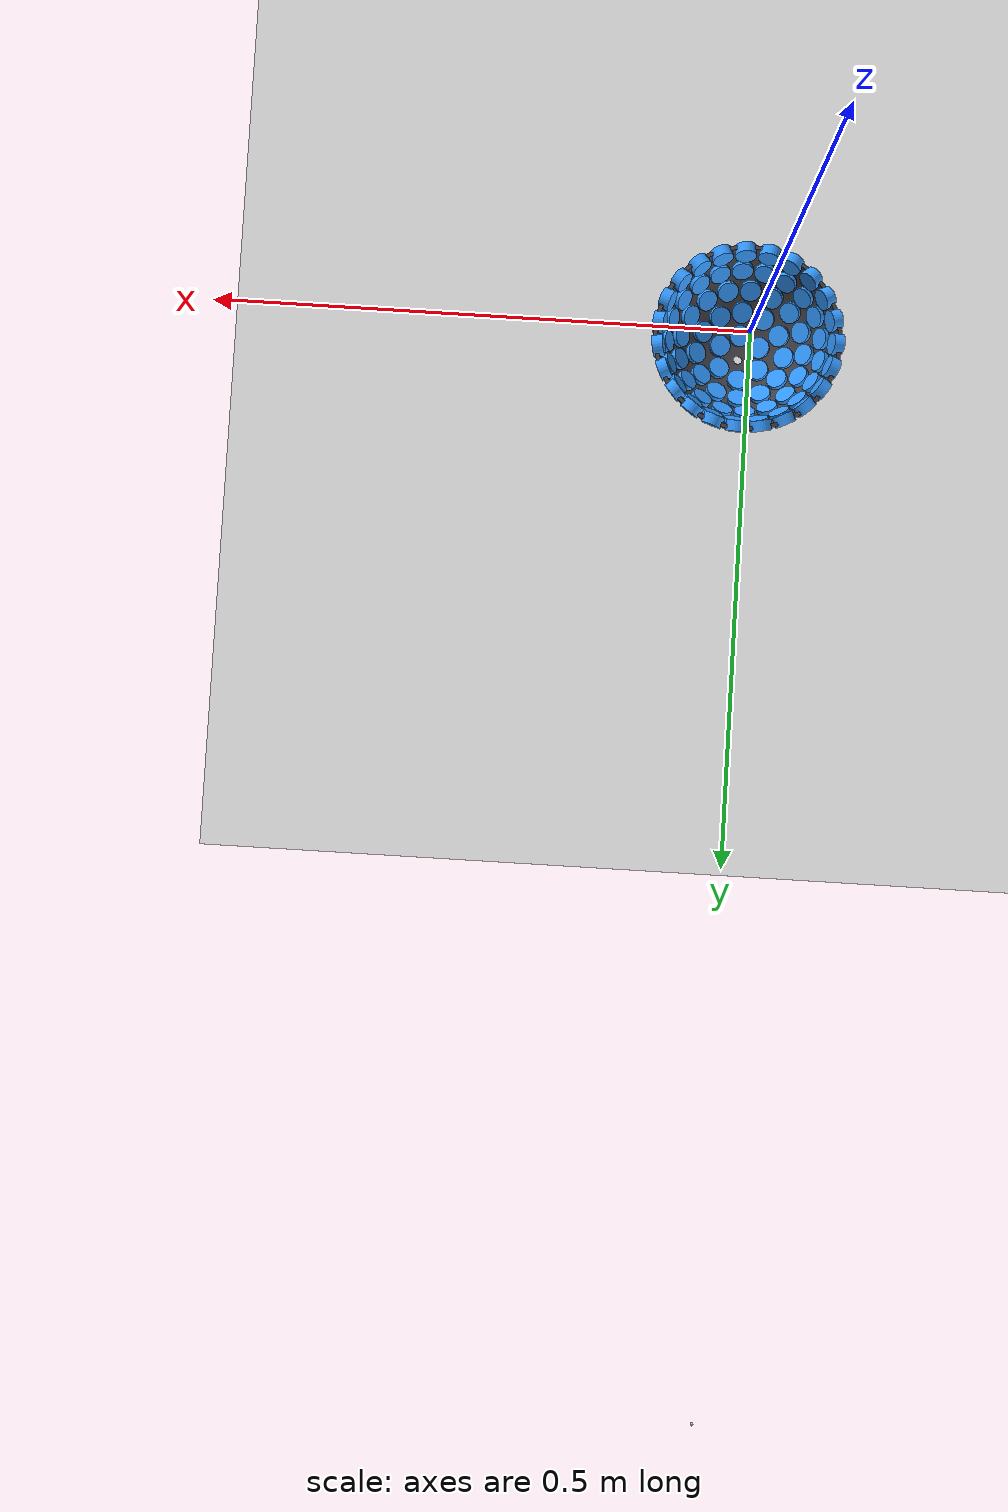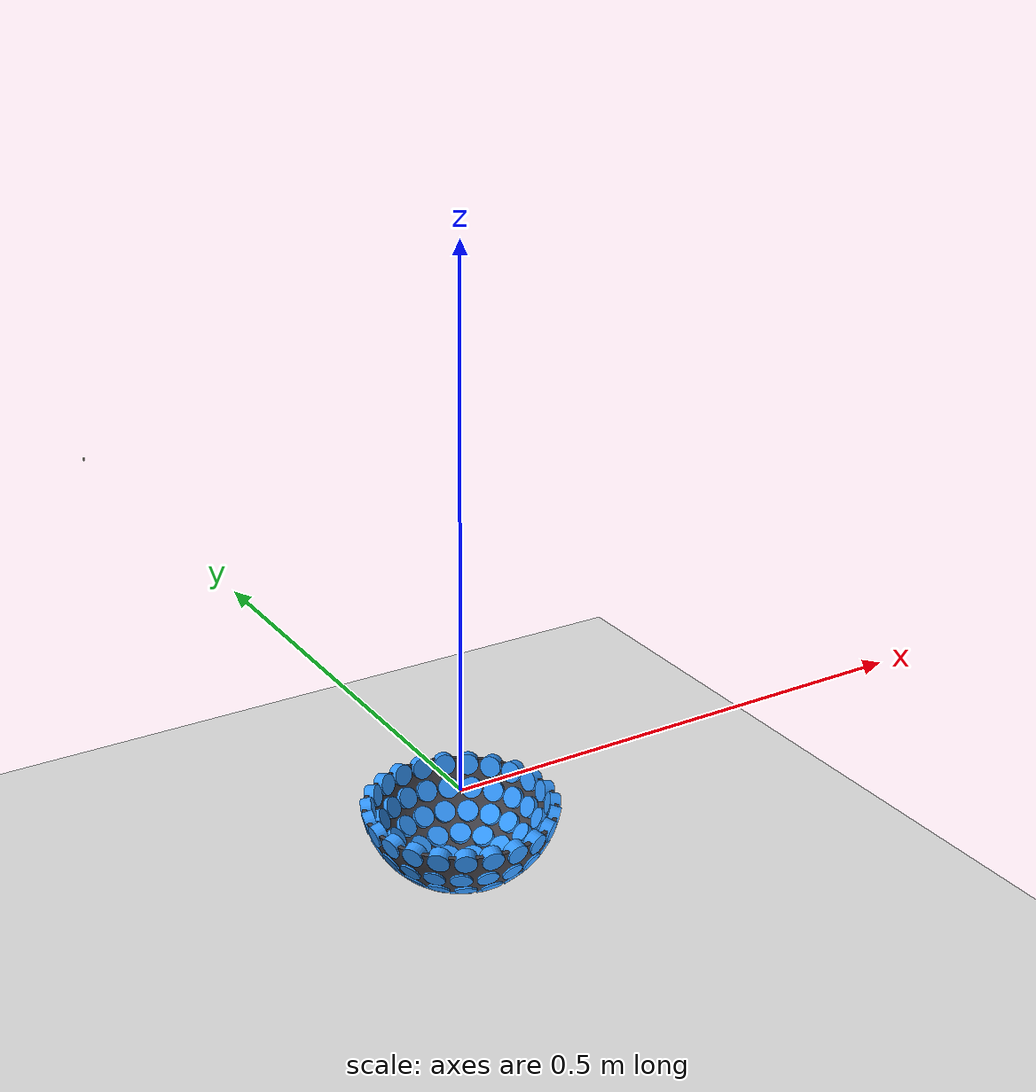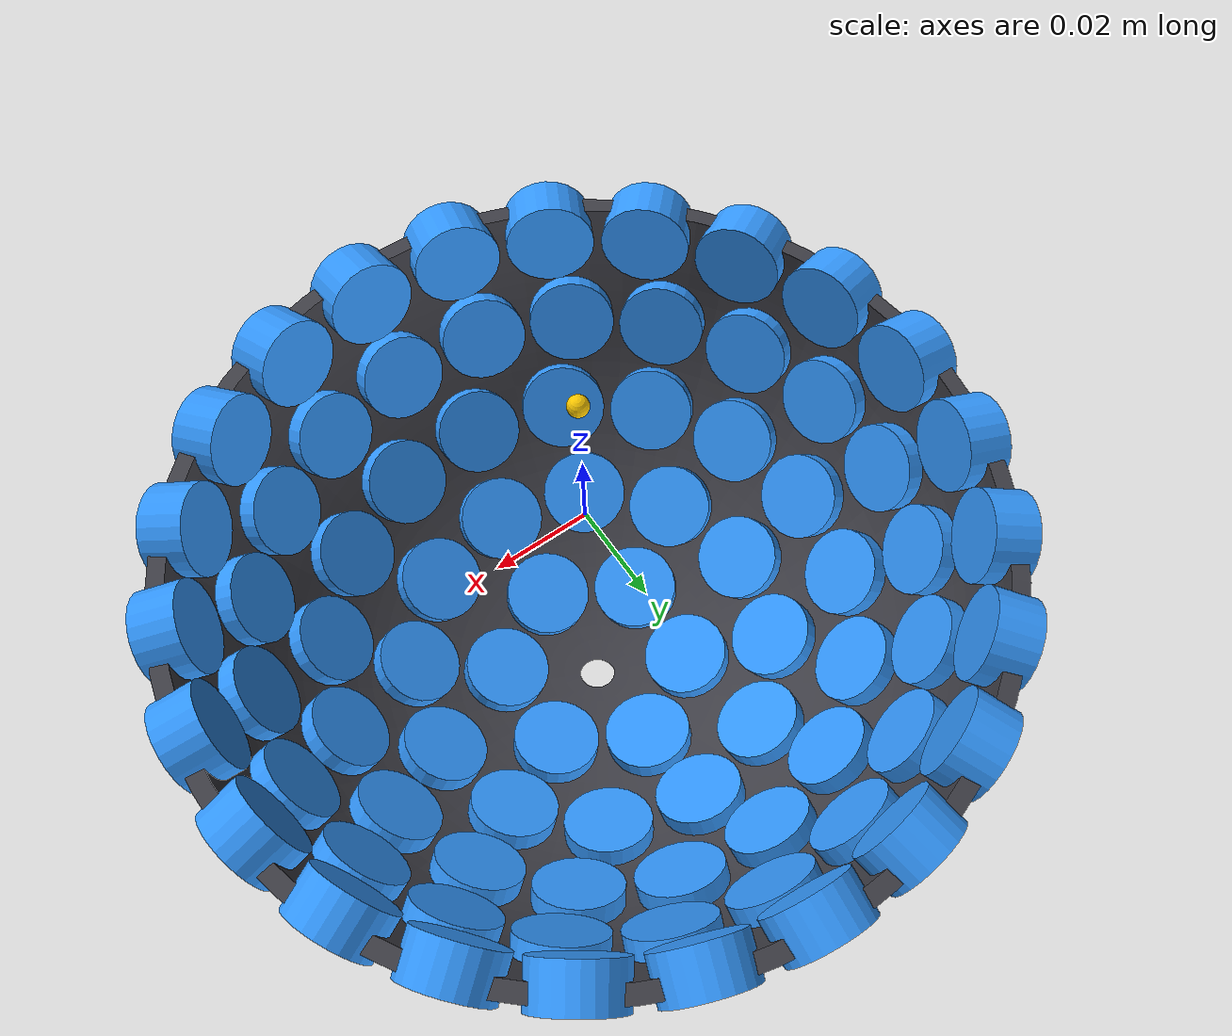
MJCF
<mujoco model="Real Scale Acoustic Levitator">
    <compiler angle="degree"/>

    <!-- Set standard air density (1.225) and viscosity (1.85e-5) -->
    <!-- Lower timestep to 0.1 milliseconds for high stability -->
    <option timestep="0.0001" density="1.225" viscosity="1.85e-5"/>

    <asset>
        <material name="sensor_mat" rgba="0.2 0.6 1 1"/>
        <!-- Dark gray matte housing for the 3D-printed bowl -->
        <material name="bowl_mat" rgba="0.25 0.25 0.28 1" specular="0.2" roughness="0.8"/>
        <mesh name="bowl_mesh" file="bowl.obj"/>
    </asset>

    <default>
        <geom friction="1.0 0.005 0.1"/>
    </default>

    <worldbody>
        <light diffuse=".5 .5 .5" pos="0 0 0.5" dir="0 0 -1"/>
        <geom type="plane" size="0.5 0.5 0.01" rgba=".9 .9 .9 1" pos="0 0 -0.15"/>

        <!-- The 3D Bowl Housing Shell -->
        <body name="transducer_housing" pos="0 0 0">
            <geom name="bowl_geom" type="mesh" mesh="bowl_mesh" material="bowl_mat" contype="1" conaffinity="1"/>
        </body>

        <!-- Transducer 1 to 79 bodies follow here... -->
        <body name="sensor_1" pos="0.01968 0.01136 -0.08294">
            <geom type="cylinder" size="0.0100 0.005" zaxis="-0.2289 -0.1321 0.9645" material="sensor_mat"/>
            <site name="site_sensor_1" pos="0 0 0" zaxis="-0.2289 -0.1321 0.9645" size="0.001" rgba="1 0 0 1"/>
        </body>
        <body name="sensor_2" pos="0.00000 0.02273 -0.08294">
            <geom type="cylinder" size="0.0100 0.005" zaxis="-0.0000 -0.2643 0.9645" material="sensor_mat"/>
            <site name="site_sensor_2" pos="0 0 0" zaxis="-0.0000 -0.2643 0.9645" size="0.001" rgba="1 0 0 1"/>
        </body>
        <body name="sensor_3" pos="-0.01968 0.01136 -0.08294">
            <geom type="cylinder" size="0.0100 0.005" zaxis="0.2289 -0.1321 0.9645" material="sensor_mat"/>
            <site name="site_sensor_3" pos="0 0 0" zaxis="0.2289 -0.1321 0.9645" size="0.001" rgba="1 0 0 1"/>
        </body>
        <body name="sensor_4" pos="-0.01968 -0.01136 -0.08294">
            <geom type="cylinder" size="0.0100 0.005" zaxis="0.2289 0.1321 0.9645" material="sensor_mat"/>
            <site name="site_sensor_4" pos="0 0 0" zaxis="0.2289 0.1321 0.9645" size="0.001" rgba="1 0 0 1"/>
        </body>
        <body name="sensor_5" pos="-0.00000 -0.02273 -0.08294">
            <geom type="cylinder" size="0.0100 0.005" zaxis="0.0000 0.2643 0.9645" material="sensor_mat"/>
            <site name="site_sensor_5" pos="0 0 0" zaxis="0.0000 0.2643 0.9645" size="0.001" rgba="1 0 0 1"/>
        </body>
        <body name="sensor_6" pos="0.01968 -0.01136 -0.08294">
            <geom type="cylinder" size="0.0100 0.005" zaxis="-0.2289 0.1321 0.9645" material="sensor_mat"/>
            <site name="site_sensor_6" pos="0 0 0" zaxis="-0.2289 0.1321 0.9645" size="0.001" rgba="1 0 0 1"/>
        </body>
        <body name="sensor_7" pos="0.04384 0.00000 -0.07399">
            <geom type="cylinder" size="0.0100 0.005" zaxis="-0.5097 -0.0000 0.8603" material="sensor_mat"/>
            <site name="site_sensor_7" pos="0 0 0" zaxis="-0.5097 -0.0000 0.8603" size="0.001" rgba="1 0 0 1"/>
        </body>
        <body name="sensor_8" pos="0.03796 0.02192 -0.07399">
            <geom type="cylinder" size="0.0100 0.005" zaxis="-0.4414 -0.2549 0.8603" material="sensor_mat"/>
            <site name="site_sensor_8" pos="0 0 0" zaxis="-0.4414 -0.2549 0.8603" size="0.001" rgba="1 0 0 1"/>
        </body>
        <body name="sensor_9" pos="0.02192 0.03796 -0.07399">
            <geom type="cylinder" size="0.0100 0.005" zaxis="-0.2549 -0.4414 0.8603" material="sensor_mat"/>
            <site name="site_sensor_9" pos="0 0 0" zaxis="-0.2549 -0.4414 0.8603" size="0.001" rgba="1 0 0 1"/>
        </body>
        <body name="sensor_10" pos="0.00000 0.04384 -0.07399">
            <geom type="cylinder" size="0.0100 0.005" zaxis="-0.0000 -0.5097 0.8603" material="sensor_mat"/>
            <site name="site_sensor_10" pos="0 0 0" zaxis="-0.0000 -0.5097 0.8603" size="0.001" rgba="1 0 0 1"/>
        </body>
        <body name="sensor_11" pos="-0.02192 0.03796 -0.07399">
            <geom type="cylinder" size="0.0100 0.005" zaxis="0.2549 -0.4414 0.8603" material="sensor_mat"/>
            <site name="site_sensor_11" pos="0 0 0" zaxis="0.2549 -0.4414 0.8603" size="0.001" rgba="1 0 0 1"/>
        </body>
        <body name="sensor_12" pos="-0.03796 0.02192 -0.07399">
            <geom type="cylinder" size="0.0100 0.005" zaxis="0.4414 -0.2549 0.8603" material="sensor_mat"/>
            <site name="site_sensor_12" pos="0 0 0" zaxis="0.4414 -0.2549 0.8603" size="0.001" rgba="1 0 0 1"/>
        </body>
        <body name="sensor_13" pos="-0.04384 0.00000 -0.07399">
            <geom type="cylinder" size="0.0100 0.005" zaxis="0.5097 -0.0000 0.8603" material="sensor_mat"/>
            <site name="site_sensor_13" pos="0 0 0" zaxis="0.5097 -0.0000 0.8603" size="0.001" rgba="1 0 0 1"/>
        </body>
        <body name="sensor_14" pos="-0.03796 -0.02192 -0.07399">
            <geom type="cylinder" size="0.0100 0.005" zaxis="0.4414 0.2549 0.8603" material="sensor_mat"/>
            <site name="site_sensor_14" pos="0 0 0" zaxis="0.4414 0.2549 0.8603" size="0.001" rgba="1 0 0 1"/>
        </body>
        <body name="sensor_15" pos="-0.02192 -0.03796 -0.07399">
            <geom type="cylinder" size="0.0100 0.005" zaxis="0.2549 0.4414 0.8603" material="sensor_mat"/>
            <site name="site_sensor_15" pos="0 0 0" zaxis="0.2549 0.4414 0.8603" size="0.001" rgba="1 0 0 1"/>
        </body>
        <body name="sensor_16" pos="-0.00000 -0.04384 -0.07399">
            <geom type="cylinder" size="0.0100 0.005" zaxis="0.0000 0.5097 0.8603" material="sensor_mat"/>
            <site name="site_sensor_16" pos="0 0 0" zaxis="0.0000 0.5097 0.8603" size="0.001" rgba="1 0 0 1"/>
        </body>
        <body name="sensor_17" pos="0.02192 -0.03796 -0.07399">
            <geom type="cylinder" size="0.0100 0.005" zaxis="-0.2549 0.4414 0.8603" material="sensor_mat"/>
            <site name="site_sensor_17" pos="0 0 0" zaxis="-0.2549 0.4414 0.8603" size="0.001" rgba="1 0 0 1"/>
        </body>
        <body name="sensor_18" pos="0.03796 -0.02192 -0.07399">
            <geom type="cylinder" size="0.0100 0.005" zaxis="-0.4414 0.2549 0.8603" material="sensor_mat"/>
            <site name="site_sensor_18" pos="0 0 0" zaxis="-0.4414 0.2549 0.8603" size="0.001" rgba="1 0 0 1"/>
        </body>
        <body name="sensor_19" pos="0.06078 0.01136 -0.05977">
            <geom type="cylinder" size="0.0100 0.005" zaxis="-0.7067 -0.1321 0.6950" material="sensor_mat"/>
            <site name="site_sensor_19" pos="0 0 0" zaxis="-0.7067 -0.1321 0.6950" size="0.001" rgba="1 0 0 1"/>
        </body>
        <body name="sensor_20" pos="0.05257 0.03255 -0.05977">
            <geom type="cylinder" size="0.0100 0.005" zaxis="-0.6113 -0.3785 0.6950" material="sensor_mat"/>
            <site name="site_sensor_20" pos="0 0 0" zaxis="-0.6113 -0.3785 0.6950" size="0.001" rgba="1 0 0 1"/>
        </body>
        <body name="sensor_21" pos="0.03726 0.04934 -0.05977">
            <geom type="cylinder" size="0.0100 0.005" zaxis="-0.4333 -0.5738 0.6950" material="sensor_mat"/>
            <site name="site_sensor_21" pos="0 0 0" zaxis="-0.4333 -0.5738 0.6950" size="0.001" rgba="1 0 0 1"/>
        </body>
        <body name="sensor_22" pos="0.01692 0.05947 -0.05977">
            <geom type="cylinder" size="0.0100 0.005" zaxis="-0.1968 -0.6915 0.6950" material="sensor_mat"/>
            <site name="site_sensor_22" pos="0 0 0" zaxis="-0.1968 -0.6915 0.6950" size="0.001" rgba="1 0 0 1"/>
        </body>
        <body name="sensor_23" pos="-0.00571 0.06157 -0.05977">
            <geom type="cylinder" size="0.0100 0.005" zaxis="0.0663 -0.7159 0.6950" material="sensor_mat"/>
            <site name="site_sensor_23" pos="0 0 0" zaxis="0.0663 -0.7159 0.6950" size="0.001" rgba="1 0 0 1"/>
        </body>
        <body name="sensor_24" pos="-0.02756 0.05535 -0.05977">
            <geom type="cylinder" size="0.0100 0.005" zaxis="0.3205 -0.6436 0.6950" material="sensor_mat"/>
            <site name="site_sensor_24" pos="0 0 0" zaxis="0.3205 -0.6436 0.6950" size="0.001" rgba="1 0 0 1"/>
        </body>
        <body name="sensor_25" pos="-0.04569 0.04166 -0.05977">
            <geom type="cylinder" size="0.0100 0.005" zaxis="0.5313 -0.4844 0.6950" material="sensor_mat"/>
            <site name="site_sensor_25" pos="0 0 0" zaxis="0.5313 -0.4844 0.6950" size="0.001" rgba="1 0 0 1"/>
        </body>
        <body name="sensor_26" pos="-0.05766 0.02234 -0.05977">
            <geom type="cylinder" size="0.0100 0.005" zaxis="0.6704 -0.2597 0.6950" material="sensor_mat"/>
            <site name="site_sensor_26" pos="0 0 0" zaxis="0.6704 -0.2597 0.6950" size="0.001" rgba="1 0 0 1"/>
        </body>
        <body name="sensor_27" pos="-0.06183 0.00000 -0.05977">
            <geom type="cylinder" size="0.0100 0.005" zaxis="0.7190 -0.0000 0.6950" material="sensor_mat"/>
            <site name="site_sensor_27" pos="0 0 0" zaxis="0.7190 -0.0000 0.6950" size="0.001" rgba="1 0 0 1"/>
        </body>
        <body name="sensor_28" pos="-0.05766 -0.02234 -0.05977">
            <geom type="cylinder" size="0.0100 0.005" zaxis="0.6704 0.2597 0.6950" material="sensor_mat"/>
            <site name="site_sensor_28" pos="0 0 0" zaxis="0.6704 0.2597 0.6950" size="0.001" rgba="1 0 0 1"/>
        </body>
        <body name="sensor_29" pos="-0.04569 -0.04166 -0.05977">
            <geom type="cylinder" size="0.0100 0.005" zaxis="0.5313 0.4844 0.6950" material="sensor_mat"/>
            <site name="site_sensor_29" pos="0 0 0" zaxis="0.5313 0.4844 0.6950" size="0.001" rgba="1 0 0 1"/>
        </body>
        <body name="sensor_30" pos="-0.02756 -0.05535 -0.05977">
            <geom type="cylinder" size="0.0100 0.005" zaxis="0.3205 0.6436 0.6950" material="sensor_mat"/>
            <site name="site_sensor_30" pos="0 0 0" zaxis="0.3205 0.6436 0.6950" size="0.001" rgba="1 0 0 1"/>
        </body>
        <body name="sensor_31" pos="-0.00571 -0.06157 -0.05977">
            <geom type="cylinder" size="0.0100 0.005" zaxis="0.0663 0.7159 0.6950" material="sensor_mat"/>
            <site name="site_sensor_31" pos="0 0 0" zaxis="0.0663 0.7159 0.6950" size="0.001" rgba="1 0 0 1"/>
        </body>
        <body name="sensor_32" pos="0.01692 -0.05947 -0.05977">
            <geom type="cylinder" size="0.0100 0.005" zaxis="-0.1968 0.6915 0.6950" material="sensor_mat"/>
            <site name="site_sensor_32" pos="0 0 0" zaxis="-0.1968 0.6915 0.6950" size="0.001" rgba="1 0 0 1"/>
        </body>
        <body name="sensor_33" pos="0.03726 -0.04934 -0.05977">
            <geom type="cylinder" size="0.0100 0.005" zaxis="-0.4333 0.5738 0.6950" material="sensor_mat"/>
            <site name="site_sensor_33" pos="0 0 0" zaxis="-0.4333 0.5738 0.6950" size="0.001" rgba="1 0 0 1"/>
        </body>
        <body name="sensor_34" pos="0.05257 -0.03255 -0.05977">
            <geom type="cylinder" size="0.0100 0.005" zaxis="-0.6113 0.3785 0.6950" material="sensor_mat"/>
            <site name="site_sensor_34" pos="0 0 0" zaxis="-0.6113 0.3785 0.6950" size="0.001" rgba="1 0 0 1"/>
        </body>
        <body name="sensor_35" pos="0.06078 -0.01136 -0.05977">
            <geom type="cylinder" size="0.0100 0.005" zaxis="-0.7067 0.1321 0.6950" material="sensor_mat"/>
            <site name="site_sensor_35" pos="0 0 0" zaxis="-0.7067 0.1321 0.6950" size="0.001" rgba="1 0 0 1"/>
        </body>
        <body name="sensor_36" pos="0.07543 0.00000 -0.04131">
            <geom type="cylinder" size="0.0100 0.005" zaxis="-0.8771 -0.0000 0.4803" material="sensor_mat"/>
            <site name="site_sensor_36" pos="0 0 0" zaxis="-0.8771 -0.0000 0.4803" size="0.001" rgba="1 0 0 1"/>
        </body>
        <body name="sensor_37" pos="0.07208 0.02223 -0.04131">
            <geom type="cylinder" size="0.0100 0.005" zaxis="-0.8381 -0.2585 0.4803" material="sensor_mat"/>
            <site name="site_sensor_37" pos="0 0 0" zaxis="-0.8381 -0.2585 0.4803" size="0.001" rgba="1 0 0 1"/>
        </body>
        <body name="sensor_38" pos="0.06232 0.04249 -0.04131">
            <geom type="cylinder" size="0.0100 0.005" zaxis="-0.7247 -0.4941 0.4803" material="sensor_mat"/>
            <site name="site_sensor_38" pos="0 0 0" zaxis="-0.7247 -0.4941 0.4803" size="0.001" rgba="1 0 0 1"/>
        </body>
        <body name="sensor_39" pos="0.04703 0.05897 -0.04131">
            <geom type="cylinder" size="0.0100 0.005" zaxis="-0.5469 -0.6857 0.4803" material="sensor_mat"/>
            <site name="site_sensor_39" pos="0 0 0" zaxis="-0.5469 -0.6857 0.4803" size="0.001" rgba="1 0 0 1"/>
        </body>
        <body name="sensor_40" pos="0.02756 0.07022 -0.04131">
            <geom type="cylinder" size="0.0100 0.005" zaxis="-0.3204 -0.8165 0.4803" material="sensor_mat"/>
            <site name="site_sensor_40" pos="0 0 0" zaxis="-0.3204 -0.8165 0.4803" size="0.001" rgba="1 0 0 1"/>
        </body>
        <body name="sensor_41" pos="0.00564 0.07522 -0.04131">
            <geom type="cylinder" size="0.0100 0.005" zaxis="-0.0655 -0.8746 0.4803" material="sensor_mat"/>
            <site name="site_sensor_41" pos="0 0 0" zaxis="-0.0655 -0.8746 0.4803" size="0.001" rgba="1 0 0 1"/>
        </body>
        <body name="sensor_42" pos="-0.01678 0.07354 -0.04131">
            <geom type="cylinder" size="0.0100 0.005" zaxis="0.1952 -0.8551 0.4803" material="sensor_mat"/>
            <site name="site_sensor_42" pos="0 0 0" zaxis="0.1952 -0.8551 0.4803" size="0.001" rgba="1 0 0 1"/>
        </body>
        <body name="sensor_43" pos="-0.03771 0.06532 -0.04131">
            <geom type="cylinder" size="0.0100 0.005" zaxis="0.4385 -0.7596 0.4803" material="sensor_mat"/>
            <site name="site_sensor_43" pos="0 0 0" zaxis="0.4385 -0.7596 0.4803" size="0.001" rgba="1 0 0 1"/>
        </body>
        <body name="sensor_44" pos="-0.05529 0.05131 -0.04131">
            <geom type="cylinder" size="0.0100 0.005" zaxis="0.6430 -0.5966 0.4803" material="sensor_mat"/>
            <site name="site_sensor_44" pos="0 0 0" zaxis="0.6430 -0.5966 0.4803" size="0.001" rgba="1 0 0 1"/>
        </body>
        <body name="sensor_45" pos="-0.06796 0.03273 -0.04131">
            <geom type="cylinder" size="0.0100 0.005" zaxis="0.7902 -0.3806 0.4803" material="sensor_mat"/>
            <site name="site_sensor_45" pos="0 0 0" zaxis="0.7902 -0.3806 0.4803" size="0.001" rgba="1 0 0 1"/>
        </body>
        <body name="sensor_46" pos="-0.07459 0.01124 -0.04131">
            <geom type="cylinder" size="0.0100 0.005" zaxis="0.8673 -0.1307 0.4803" material="sensor_mat"/>
            <site name="site_sensor_46" pos="0 0 0" zaxis="0.8673 -0.1307 0.4803" size="0.001" rgba="1 0 0 1"/>
        </body>
        <body name="sensor_47" pos="-0.07459 -0.01124 -0.04131">
            <geom type="cylinder" size="0.0100 0.005" zaxis="0.8673 0.1307 0.4803" material="sensor_mat"/>
            <site name="site_sensor_47" pos="0 0 0" zaxis="0.8673 0.1307 0.4803" size="0.001" rgba="1 0 0 1"/>
        </body>
        <body name="sensor_48" pos="-0.06796 -0.03273 -0.04131">
            <geom type="cylinder" size="0.0100 0.005" zaxis="0.7902 0.3806 0.4803" material="sensor_mat"/>
            <site name="site_sensor_48" pos="0 0 0" zaxis="0.7902 0.3806 0.4803" size="0.001" rgba="1 0 0 1"/>
        </body>
        <body name="sensor_49" pos="-0.05529 -0.05131 -0.04131">
            <geom type="cylinder" size="0.0100 0.005" zaxis="0.6430 0.5966 0.4803" material="sensor_mat"/>
            <site name="site_sensor_49" pos="0 0 0" zaxis="0.6430 0.5966 0.4803" size="0.001" rgba="1 0 0 1"/>
        </body>
        <body name="sensor_50" pos="-0.03771 -0.06532 -0.04131">
            <geom type="cylinder" size="0.0100 0.005" zaxis="0.4385 0.7596 0.4803" material="sensor_mat"/>
            <site name="site_sensor_50" pos="0 0 0" zaxis="0.4385 0.7596 0.4803" size="0.001" rgba="1 0 0 1"/>
        </body>
        <body name="sensor_51" pos="-0.01678 -0.07354 -0.04131">
            <geom type="cylinder" size="0.0100 0.005" zaxis="0.1952 0.8551 0.4803" material="sensor_mat"/>
            <site name="site_sensor_51" pos="0 0 0" zaxis="0.1952 0.8551 0.4803" size="0.001" rgba="1 0 0 1"/>
        </body>
        <body name="sensor_52" pos="0.00564 -0.07522 -0.04131">
            <geom type="cylinder" size="0.0100 0.005" zaxis="-0.0655 0.8746 0.4803" material="sensor_mat"/>
            <site name="site_sensor_52" pos="0 0 0" zaxis="-0.0655 0.8746 0.4803" size="0.001" rgba="1 0 0 1"/>
        </body>
        <body name="sensor_53" pos="0.02756 -0.07022 -0.04131">
            <geom type="cylinder" size="0.0100 0.005" zaxis="-0.3204 0.8165 0.4803" material="sensor_mat"/>
            <site name="site_sensor_53" pos="0 0 0" zaxis="-0.3204 0.8165 0.4803" size="0.001" rgba="1 0 0 1"/>
        </body>
        <body name="sensor_54" pos="0.04703 -0.05897 -0.04131">
            <geom type="cylinder" size="0.0100 0.005" zaxis="-0.5469 0.6857 0.4803" material="sensor_mat"/>
            <site name="site_sensor_54" pos="0 0 0" zaxis="-0.5469 0.6857 0.4803" size="0.001" rgba="1 0 0 1"/>
        </body>
        <body name="sensor_55" pos="0.06232 -0.04249 -0.04131">
            <geom type="cylinder" size="0.0100 0.005" zaxis="-0.7247 0.4941 0.4803" material="sensor_mat"/>
            <site name="site_sensor_55" pos="0 0 0" zaxis="-0.7247 0.4941 0.4803" size="0.001" rgba="1 0 0 1"/>
        </body>
        <body name="sensor_56" pos="0.07208 -0.02223 -0.04131">
            <geom type="cylinder" size="0.0100 0.005" zaxis="-0.8381 0.2585 0.4803" material="sensor_mat"/>
            <site name="site_sensor_56" pos="0 0 0" zaxis="-0.8381 0.2585 0.4803" size="0.001" rgba="1 0 0 1"/>
        </body>
        <body name="sensor_57" pos="0.08289 0.01139 -0.01991">
            <geom type="cylinder" size="0.0100 0.005" zaxis="-0.9638 -0.1325 0.2315" material="sensor_mat"/>
            <site name="site_sensor_57" pos="0 0 0" zaxis="-0.9638 -0.1325 0.2315" size="0.001" rgba="1 0 0 1"/>
        </body>
        <body name="sensor_58" pos="0.07674 0.03333 -0.01991">
            <geom type="cylinder" size="0.0100 0.005" zaxis="-0.8923 -0.3876 0.2315" material="sensor_mat"/>
            <site name="site_sensor_58" pos="0 0 0" zaxis="-0.8923 -0.3876 0.2315" size="0.001" rgba="1 0 0 1"/>
        </body>
        <body name="sensor_59" pos="0.06490 0.05280 -0.01991">
            <geom type="cylinder" size="0.0100 0.005" zaxis="-0.7546 -0.6139 0.2315" material="sensor_mat"/>
            <site name="site_sensor_59" pos="0 0 0" zaxis="-0.7546 -0.6139 0.2315" size="0.001" rgba="1 0 0 1"/>
        </body>
        <body name="sensor_60" pos="0.04825 0.06835 -0.01991">
            <geom type="cylinder" size="0.0100 0.005" zaxis="-0.5610 -0.7948 0.2315" material="sensor_mat"/>
            <site name="site_sensor_60" pos="0 0 0" zaxis="-0.5610 -0.7948 0.2315" size="0.001" rgba="1 0 0 1"/>
        </body>
        <body name="sensor_61" pos="0.02802 0.07883 -0.01991">
            <geom type="cylinder" size="0.0100 0.005" zaxis="-0.3258 -0.9167 0.2315" material="sensor_mat"/>
            <site name="site_sensor_61" pos="0 0 0" zaxis="-0.3258 -0.9167 0.2315" size="0.001" rgba="1 0 0 1"/>
        </body>
        <body name="sensor_62" pos="0.00571 0.08347 -0.01991">
            <geom type="cylinder" size="0.0100 0.005" zaxis="-0.0664 -0.9706 0.2315" material="sensor_mat"/>
            <site name="site_sensor_62" pos="0 0 0" zaxis="-0.0664 -0.9706 0.2315" size="0.001" rgba="1 0 0 1"/>
        </body>
        <body name="sensor_63" pos="-0.01702 0.08191 -0.01991">
            <geom type="cylinder" size="0.0100 0.005" zaxis="0.1979 -0.9525 0.2315" material="sensor_mat"/>
            <site name="site_sensor_63" pos="0 0 0" zaxis="0.1979 -0.9525 0.2315" size="0.001" rgba="1 0 0 1"/>
        </body>
        <body name="sensor_64" pos="-0.03849 0.07428 -0.01991">
            <geom type="cylinder" size="0.0100 0.005" zaxis="0.4476 -0.8638 0.2315" material="sensor_mat"/>
            <site name="site_sensor_64" pos="0 0 0" zaxis="0.4476 -0.8638 0.2315" size="0.001" rgba="1 0 0 1"/>
        </body>
        <body name="sensor_65" pos="-0.05711 0.06114 -0.01991">
            <geom type="cylinder" size="0.0100 0.005" zaxis="0.6640 -0.7110 0.2315" material="sensor_mat"/>
            <site name="site_sensor_65" pos="0 0 0" zaxis="0.6640 -0.7110 0.2315" size="0.001" rgba="1 0 0 1"/>
        </body>
        <body name="sensor_66" pos="-0.07148 0.04347 -0.01991">
            <geom type="cylinder" size="0.0100 0.005" zaxis="0.8312 -0.5055 0.2315" material="sensor_mat"/>
            <site name="site_sensor_66" pos="0 0 0" zaxis="0.8312 -0.5055 0.2315" size="0.001" rgba="1 0 0 1"/>
        </body>
        <body name="sensor_67" pos="-0.08056 0.02257 -0.01991">
            <geom type="cylinder" size="0.0100 0.005" zaxis="0.9368 -0.2625 0.2315" material="sensor_mat"/>
            <site name="site_sensor_67" pos="0 0 0" zaxis="0.9368 -0.2625 0.2315" size="0.001" rgba="1 0 0 1"/>
        </body>
        <body name="sensor_68" pos="-0.08366 0.00000 -0.01991">
            <geom type="cylinder" size="0.0100 0.005" zaxis="0.9728 -0.0000 0.2315" material="sensor_mat"/>
            <site name="site_sensor_68" pos="0 0 0" zaxis="0.9728 -0.0000 0.2315" size="0.001" rgba="1 0 0 1"/>
        </body>
        <body name="sensor_69" pos="-0.08056 -0.02257 -0.01991">
            <geom type="cylinder" size="0.0100 0.005" zaxis="0.9368 0.2625 0.2315" material="sensor_mat"/>
            <site name="site_sensor_69" pos="0 0 0" zaxis="0.9368 0.2625 0.2315" size="0.001" rgba="1 0 0 1"/>
        </body>
        <body name="sensor_70" pos="-0.07148 -0.04347 -0.01991">
            <geom type="cylinder" size="0.0100 0.005" zaxis="0.8312 0.5055 0.2315" material="sensor_mat"/>
            <site name="site_sensor_70" pos="0 0 0" zaxis="0.8312 0.5055 0.2315" size="0.001" rgba="1 0 0 1"/>
        </body>
        <body name="sensor_71" pos="-0.05711 -0.06114 -0.01991">
            <geom type="cylinder" size="0.0100 0.005" zaxis="0.6640 0.7110 0.2315" material="sensor_mat"/>
            <site name="site_sensor_71" pos="0 0 0" zaxis="0.6640 0.7110 0.2315" size="0.001" rgba="1 0 0 1"/>
        </body>
        <body name="sensor_72" pos="-0.03849 -0.07428 -0.01991">
            <geom type="cylinder" size="0.0100 0.005" zaxis="0.4476 0.8638 0.2315" material="sensor_mat"/>
            <site name="site_sensor_72" pos="0 0 0" zaxis="0.4476 0.8638 0.2315" size="0.001" rgba="1 0 0 1"/>
        </body>
        <body name="sensor_73" pos="-0.01702 -0.08191 -0.01991">
            <geom type="cylinder" size="0.0100 0.005" zaxis="0.1979 0.9525 0.2315" material="sensor_mat"/>
            <site name="site_sensor_73" pos="0 0 0" zaxis="0.1979 0.9525 0.2315" size="0.001" rgba="1 0 0 1"/>
        </body>
        <body name="sensor_74" pos="0.00571 -0.08347 -0.01991">
            <geom type="cylinder" size="0.0100 0.005" zaxis="-0.0664 0.9706 0.2315" material="sensor_mat"/>
            <site name="site_sensor_74" pos="0 0 0" zaxis="-0.0664 0.9706 0.2315" size="0.001" rgba="1 0 0 1"/>
        </body>
        <body name="sensor_75" pos="0.02802 -0.07883 -0.01991">
            <geom type="cylinder" size="0.0100 0.005" zaxis="-0.3258 0.9167 0.2315" material="sensor_mat"/>
            <site name="site_sensor_75" pos="0 0 0" zaxis="-0.3258 0.9167 0.2315" size="0.001" rgba="1 0 0 1"/>
        </body>
        <body name="sensor_76" pos="0.04825 -0.06835 -0.01991">
            <geom type="cylinder" size="0.0100 0.005" zaxis="-0.5610 0.7948 0.2315" material="sensor_mat"/>
            <site name="site_sensor_76" pos="0 0 0" zaxis="-0.5610 0.7948 0.2315" size="0.001" rgba="1 0 0 1"/>
        </body>
        <body name="sensor_77" pos="0.06490 -0.05280 -0.01991">
            <geom type="cylinder" size="0.0100 0.005" zaxis="-0.7546 0.6139 0.2315" material="sensor_mat"/>
            <site name="site_sensor_77" pos="0 0 0" zaxis="-0.7546 0.6139 0.2315" size="0.001" rgba="1 0 0 1"/>
        </body>
        <body name="sensor_78" pos="0.07674 -0.03333 -0.01991">
            <geom type="cylinder" size="0.0100 0.005" zaxis="-0.8923 0.3876 0.2315" material="sensor_mat"/>
            <site name="site_sensor_78" pos="0 0 0" zaxis="-0.8923 0.3876 0.2315" size="0.001" rgba="1 0 0 1"/>
        </body>
        <body name="sensor_79" pos="0.08289 -0.01139 -0.01991">
            <geom type="cylinder" size="0.0100 0.005" zaxis="-0.9638 0.1325 0.2315" material="sensor_mat"/>
            <site name="site_sensor_79" pos="0 0 0" zaxis="-0.9638 0.1325 0.2315" size="0.001" rgba="1 0 0 1"/>
        </body>

        <!-- test object -->

        <body name="test_rice" pos="0 1 0.00">
            <freejoint/>
            <!-- Scaled down to 1mm radius, 2mm half-length -->
            <geom type="capsule" size="0.001 0.002" mass="0.0001" rgba="0.9 0.9 0.8 1"/>
        </body>

        <body name="test_ball" pos="0 0 0.04">
            <freejoint/>
            <!-- Scaled down to 5mm radius 1 gram -->
            <geom type="sphere" size="0.002" density="40" rgba="1 0.8 0 1"/>
        </body>
    </worldbody>

    <!-- sensor block -->
    <sensor>
        <rangefinder name="ultra_1" site="site_sensor_1" cutoff="0.15" noise="0.01"/>
        <rangefinder name="ultra_2" site="site_sensor_2" cutoff="0.15" noise="0.01"/>
        <rangefinder name="ultra_3" site="site_sensor_3" cutoff="0.15" noise="0.01"/>
        <rangefinder name="ultra_4" site="site_sensor_4" cutoff="0.15" noise="0.01"/>
        <rangefinder name="ultra_5" site="site_sensor_5" cutoff="0.15" noise="0.01"/>
        <rangefinder name="ultra_6" site="site_sensor_6" cutoff="0.15" noise="0.01"/>
        <rangefinder name="ultra_7" site="site_sensor_7" cutoff="0.15" noise="0.01"/>
        <rangefinder name="ultra_8" site="site_sensor_8" cutoff="0.15" noise="0.01"/>
        <rangefinder name="ultra_9" site="site_sensor_9" cutoff="0.15" noise="0.01"/>
        <rangefinder name="ultra_10" site="site_sensor_10" cutoff="0.15" noise="0.01"/>
        <rangefinder name="ultra_11" site="site_sensor_11" cutoff="0.15" noise="0.01"/>
        <rangefinder name="ultra_12" site="site_sensor_12" cutoff="0.15" noise="0.01"/>
        <rangefinder name="ultra_13" site="site_sensor_13" cutoff="0.15" noise="0.01"/>
        <rangefinder name="ultra_14" site="site_sensor_14" cutoff="0.15" noise="0.01"/>
        <rangefinder name="ultra_15" site="site_sensor_15" cutoff="0.15" noise="0.01"/>
        <rangefinder name="ultra_16" site="site_sensor_16" cutoff="0.15" noise="0.01"/>
        <rangefinder name="ultra_17" site="site_sensor_17" cutoff="0.15" noise="0.01"/>
        <rangefinder name="ultra_18" site="site_sensor_18" cutoff="0.15" noise="0.01"/>
        <rangefinder name="ultra_19" site="site_sensor_19" cutoff="0.15" noise="0.01"/>
        <rangefinder name="ultra_20" site="site_sensor_20" cutoff="0.15" noise="0.01"/>
        <rangefinder name="ultra_21" site="site_sensor_21" cutoff="0.15" noise="0.01"/>
        <rangefinder name="ultra_22" site="site_sensor_22" cutoff="0.15" noise="0.01"/>
        <rangefinder name="ultra_23" site="site_sensor_23" cutoff="0.15" noise="0.01"/>
        <rangefinder name="ultra_24" site="site_sensor_24" cutoff="0.15" noise="0.01"/>
        <rangefinder name="ultra_25" site="site_sensor_25" cutoff="0.15" noise="0.01"/>
        <rangefinder name="ultra_26" site="site_sensor_26" cutoff="0.15" noise="0.01"/>
        <rangefinder name="ultra_27" site="site_sensor_27" cutoff="0.15" noise="0.01"/>
        <rangefinder name="ultra_28" site="site_sensor_28" cutoff="0.15" noise="0.01"/>
        <rangefinder name="ultra_29" site="site_sensor_29" cutoff="0.15" noise="0.01"/>
        <rangefinder name="ultra_30" site="site_sensor_30" cutoff="0.15" noise="0.01"/>
        <rangefinder name="ultra_31" site="site_sensor_31" cutoff="0.15" noise="0.01"/>
        <rangefinder name="ultra_32" site="site_sensor_32" cutoff="0.15" noise="0.01"/>
        <rangefinder name="ultra_33" site="site_sensor_33" cutoff="0.15" noise="0.01"/>
        <rangefinder name="ultra_34" site="site_sensor_34" cutoff="0.15" noise="0.01"/>
        <rangefinder name="ultra_35" site="site_sensor_35" cutoff="0.15" noise="0.01"/>
        <rangefinder name="ultra_36" site="site_sensor_36" cutoff="0.15" noise="0.01"/>
        <rangefinder name="ultra_37" site="site_sensor_37" cutoff="0.15" noise="0.01"/>
        <rangefinder name="ultra_38" site="site_sensor_38" cutoff="0.15" noise="0.01"/>
        <rangefinder name="ultra_39" site="site_sensor_39" cutoff="0.15" noise="0.01"/>
        <rangefinder name="ultra_40" site="site_sensor_40" cutoff="0.15" noise="0.01"/>
        <rangefinder name="ultra_41" site="site_sensor_41" cutoff="0.15" noise="0.01"/>
        <rangefinder name="ultra_42" site="site_sensor_42" cutoff="0.15" noise="0.01"/>
        <rangefinder name="ultra_43" site="site_sensor_43" cutoff="0.15" noise="0.01"/>
        <rangefinder name="ultra_44" site="site_sensor_44" cutoff="0.15" noise="0.01"/>
        <rangefinder name="ultra_45" site="site_sensor_45" cutoff="0.15" noise="0.01"/>
        <rangefinder name="ultra_46" site="site_sensor_46" cutoff="0.15" noise="0.01"/>
        <rangefinder name="ultra_47" site="site_sensor_47" cutoff="0.15" noise="0.01"/>
        <rangefinder name="ultra_48" site="site_sensor_48" cutoff="0.15" noise="0.01"/>
        <rangefinder name="ultra_49" site="site_sensor_49" cutoff="0.15" noise="0.01"/>
        <rangefinder name="ultra_50" site="site_sensor_50" cutoff="0.15" noise="0.01"/>
        <rangefinder name="ultra_51" site="site_sensor_51" cutoff="0.15" noise="0.01"/>
        <rangefinder name="ultra_52" site="site_sensor_52" cutoff="0.15" noise="0.01"/>
        <rangefinder name="ultra_53" site="site_sensor_53" cutoff="0.15" noise="0.01"/>
        <rangefinder name="ultra_54" site="site_sensor_54" cutoff="0.15" noise="0.01"/>
        <rangefinder name="ultra_55" site="site_sensor_55" cutoff="0.15" noise="0.01"/>
        <rangefinder name="ultra_56" site="site_sensor_56" cutoff="0.15" noise="0.01"/>
        <rangefinder name="ultra_57" site="site_sensor_57" cutoff="0.15" noise="0.01"/>
        <rangefinder name="ultra_58" site="site_sensor_58" cutoff="0.15" noise="0.01"/>
        <rangefinder name="ultra_59" site="site_sensor_59" cutoff="0.15" noise="0.01"/>
        <rangefinder name="ultra_60" site="site_sensor_60" cutoff="0.15" noise="0.01"/>
        <rangefinder name="ultra_61" site="site_sensor_61" cutoff="0.15" noise="0.01"/>
        <rangefinder name="ultra_62" site="site_sensor_62" cutoff="0.15" noise="0.01"/>
        <rangefinder name="ultra_63" site="site_sensor_63" cutoff="0.15" noise="0.01"/>
        <rangefinder name="ultra_64" site="site_sensor_64" cutoff="0.15" noise="0.01"/>
        <rangefinder name="ultra_65" site="site_sensor_65" cutoff="0.15" noise="0.01"/>
        <rangefinder name="ultra_66" site="site_sensor_66" cutoff="0.15" noise="0.01"/>
        <rangefinder name="ultra_67" site="site_sensor_67" cutoff="0.15" noise="0.01"/>
        <rangefinder name="ultra_68" site="site_sensor_68" cutoff="0.15" noise="0.01"/>
        <rangefinder name="ultra_69" site="site_sensor_69" cutoff="0.15" noise="0.01"/>
        <rangefinder name="ultra_70" site="site_sensor_70" cutoff="0.15" noise="0.01"/>
        <rangefinder name="ultra_71" site="site_sensor_71" cutoff="0.15" noise="0.01"/>
        <rangefinder name="ultra_72" site="site_sensor_72" cutoff="0.15" noise="0.01"/>
        <rangefinder name="ultra_73" site="site_sensor_73" cutoff="0.15" noise="0.01"/>
        <rangefinder name="ultra_74" site="site_sensor_74" cutoff="0.15" noise="0.01"/>
        <rangefinder name="ultra_75" site="site_sensor_75" cutoff="0.15" noise="0.01"/>
        <rangefinder name="ultra_76" site="site_sensor_76" cutoff="0.15" noise="0.01"/>
        <rangefinder name="ultra_77" site="site_sensor_77" cutoff="0.15" noise="0.01"/>
        <rangefinder name="ultra_78" site="site_sensor_78" cutoff="0.15" noise="0.01"/>
        <rangefinder name="ultra_79" site="site_sensor_79" cutoff="0.15" noise="0.01"/>
    </sensor>
</mujoco>
